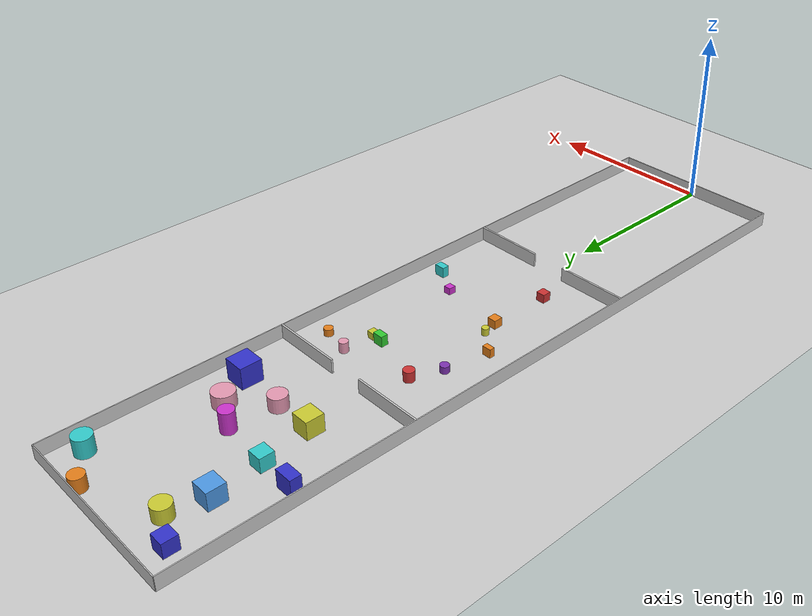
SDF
<sdf version="1.8">
 <world name="flat_world">
  <physics name="1ms" type="bullet">
   <max_step_size>0.001</max_step_size>
   <real_time_factor>1.0</real_time_factor>
  </physics>
  <plugin filename="libignition-gazebo-physics-system.so" name="ignition::gazebo::systems::Physics"/>
  <plugin filename="libignition-gazebo-user-commands-system.so" name="ignition::gazebo::systems::UserCommands"/>
  <plugin filename="libignition-gazebo-scene-broadcaster-system.so" name="ignition::gazebo::systems::SceneBroadcaster"/>
  <plugin filename="libignition-gazebo-sensors-system.so" name="ignition::gazebo::systems::Sensors"/>
  <light type="directional" name="sun">
   <pose>0 0 10 0 0 0</pose>
   <diffuse>0.8 0.8 0.8 1</diffuse>
   <specular>0.2 0.2 0.2 1</specular>
   <attenuation>
    <range>1000</range>
    <constant>0.9</constant>
    <linear>0.01</linear>
    <quadratic>0.001</quadratic>
   </attenuation>
   <direction>-0.5 0.1 -0.9</direction>
  </light>
  <model name="ground_plane">
   <static>true</static>
   <link name="link">
    <collision name="collision"><geometry><plane><normal>0 0 1</normal></plane></geometry></collision>
    <visual name="visual">
     <geometry><plane><normal>0 0 1</normal><size>100 100</size></plane></geometry>
     <material>
      <ambient>0.8 0.8 0.8 1</ambient>
      <diffuse>0.8 0.8 0.8 1</diffuse>
      <specular>0.8 0.8 0.8 1</specular>
     </material>
    </visual>
   </link>
  </model>
  <model name="wall_1">
   <pose relative_to="world">-5 20 0.25 0 0 0</pose>
   <static>true</static>
   <link name="link">
    <collision name="collision"><geometry><box><size>0.05 40 1</size></box></geometry></collision>
    <visual name="visual">
     <geometry><box><size>0.05 40 1</size></box></geometry>
     <material>
      <ambient>0.8 0.8 0.8 1</ambient>
      <diffuse>0.8 0.8 0.8 1</diffuse>
      <specular>0.8 0.8 0.8 1</specular>
     </material>
    </visual>
   </link>
  </model>
  <model name="wall_2">
   <pose relative_to="world">5 20 0.25 0 0 0</pose>
   <static>true</static>
   <link name="link">
    <collision name="collision"><geometry><box><size>0.05 40 1</size></box></geometry></collision>
    <visual name="visual">
     <geometry><box><size>0.05 40 1</size></box></geometry>
     <material>
      <ambient>0.8 0.8 0.8 1</ambient>
      <diffuse>0.8 0.8 0.8 1</diffuse>
      <specular>0.8 0.8 0.8 1</specular>
     </material>
    </visual>
   </link>
  </model>
  <model name="wall_3">
   <pose relative_to="world">0 0 0.25 0 0 0</pose>
   <static>true</static>
   <link name="link">
    <collision name="collision"><geometry><box><size>10 0.05 1</size></box></geometry></collision>
    <visual name="visual">
     <geometry><box><size>10 0.05 1</size></box></geometry>
     <material>
      <ambient>0.8 0.8 0.8 1</ambient>
      <diffuse>0.8 0.8 0.8 1</diffuse>
      <specular>0.8 0.8 0.8 1</specular>
     </material>
    </visual>
   </link>
  </model>
  <model name="wall_4">
   <pose relative_to="world">0 40 0.25 0 0 0</pose>
   <static>true</static>
   <link name="link">
    <collision name="collision"><geometry><box><size>10 0.05 1</size></box></geometry></collision>
    <visual name="visual">
     <geometry><box><size>10 0.05 1</size></box></geometry>
     <material>
      <ambient>0.8 0.8 0.8 1</ambient>
      <diffuse>0.8 0.8 0.8 1</diffuse>
      <specular>0.8 0.8 0.8 1</specular>
     </material>
    </visual>
   </link>
  </model>
  <model name="wall_M1_L">
   <pose relative_to="world">-3 13 0.25 0 0 0</pose>
   <static>true</static>
   <link name="link">
    <collision name="collision"><geometry><box><size>4 0.1 1</size></box></geometry></collision>
    <visual name="visual">
     <geometry><box><size>4 0.1 1</size></box></geometry>
     <material>
      <ambient>0.8 0.8 0.8 1</ambient>
      <diffuse>0.8 0.8 0.8 1</diffuse>
      <specular>0.8 0.8 0.8 1</specular>
     </material>
    </visual>
   </link>
  </model>
  <model name="wall_M1_R">
   <pose relative_to="world">3 13 0.25 0 0 0</pose>
   <static>true</static>
   <link name="link">
    <collision name="collision"><geometry><box><size>4 0.1 1</size></box></geometry></collision>
    <visual name="visual">
     <geometry><box><size>4 0.1 1</size></box></geometry>
     <material>
      <ambient>0.8 0.8 0.8 1</ambient>
      <diffuse>0.8 0.8 0.8 1</diffuse>
      <specular>0.8 0.8 0.8 1</specular>
     </material>
    </visual>
   </link>
  </model>
  <model name="wall_M2_L">
   <pose relative_to="world">-3 27 0.25 0 0 0</pose>
   <static>true</static>
   <link name="link">
    <collision name="collision"><geometry><box><size>4 0.1 1</size></box></geometry></collision>
    <visual name="visual">
     <geometry><box><size>4 0.1 1</size></box></geometry>
     <material>
      <ambient>0.8 0.8 0.8 1</ambient>
      <diffuse>0.8 0.8 0.8 1</diffuse>
      <specular>0.8 0.8 0.8 1</specular>
     </material>
    </visual>
   </link>
  </model>
  <model name="wall_M2_R">
   <pose relative_to="world">3 27 0.25 0 0 0</pose>
   <static>true</static>
   <link name="link">
    <collision name="collision"><geometry><box><size>4 0.1 1</size></box></geometry></collision>
    <visual name="visual">
     <geometry><box><size>4 0.1 1</size></box></geometry>
     <material>
      <ambient>0.8 0.8 0.8 1</ambient>
      <diffuse>0.8 0.8 0.8 1</diffuse>
      <specular>0.8 0.8 0.8 1</specular>
     </material>
    </visual>
   </link>
  </model>
  <model name="boxes_st3">
   <static>true</static>
   <pose>0.5 34 0 0 0 0</pose>
   <link name="c1">
    <pose>0.13179003909349518 -3.609428301056461 0.4 0 0 0</pose>
    <collision name="collision">
     <geometry><cylinder><radius>0.5</radius><length>0.8</length></cylinder></geometry>
    </collision>
    <visual name="visual">
     <geometry><cylinder><radius>0.5</radius><length>0.8</length></cylinder></geometry>
     <material>
      <ambient>0.9 0.6 0.7 1</ambient>
      <diffuse>0.9 0.6 0.7 1</diffuse>
      <specular>0.9 0.6 0.7 1</specular>
     </material>
    </visual>
   </link>
   <link name="c2">
    <pose>1.4966084119527396 5.511280237720258 0.4 0 0 0</pose>
    <collision name="collision">
     <geometry><cylinder><radius>0.4</radius><length>0.8</length></cylinder></geometry>
    </collision>
    <visual name="visual">
     <geometry><cylinder><radius>0.4</radius><length>0.8</length></cylinder></geometry>
     <material>
      <ambient>0.9 0.5 0.1 1</ambient>
      <diffuse>0.9 0.5 0.1 1</diffuse>
      <specular>0.9 0.5 0.1 1</specular>
     </material>
    </visual>
   </link>
   <link name="b3">
    <pose>-2.8746035635907603 1.8694768695346662 0.5 0 0 0</pose>
    <collision name="collision"><geometry><box><size>1.0 1.0 1.0</size></box></geometry></collision>
    <visual name="visual">
     <geometry><box><size>1.0 1.0 1.0</size></box></geometry>
     <material>
      <ambient>0.3 0.6 0.9 1</ambient>
      <diffuse>0.3 0.6 0.9 1</diffuse>
      <specular>0.3 0.6 0.9 1</specular>
     </material>
    </visual>
   </link>
   <link name="b4">
    <pose>-4.58634859124016 -0.8112041501779057 0.5 0 0 0</pose>
    <collision name="collision"><geometry><box><size>1.0 0.6 1.0</size></box></geometry></collision>
    <visual name="visual">
     <geometry><box><size>1.0 0.6 1.0</size></box></geometry>
     <material>
      <ambient>0.2 0.2 0.8 1</ambient>
      <diffuse>0.2 0.2 0.8 1</diffuse>
      <specular>0.2 0.2 0.8 1</specular>
     </material>
    </visual>
   </link>
   <link name="b5">
    <pose>-2.5617585535832443 -0.8687398462835416 0.4 0 0 0</pose>
    <collision name="collision"><geometry><box><size>0.8 0.8 0.8</size></box></geometry></collision>
    <visual name="visual">
     <geometry><box><size>0.8 0.8 0.8</size></box></geometry>
     <material>
      <ambient>0.2 0.8 0.8 1</ambient>
      <diffuse>0.2 0.8 0.8 1</diffuse>
      <specular>0.2 0.8 0.8 1</specular>
     </material>
    </visual>
   </link>
   <link name="b6">
    <pose>-2.12863131363247 -3.656695427857893 0.5 0 0 0</pose>
    <collision name="collision"><geometry><box><size>1.0 1.0 1.0</size></box></geometry></collision>
    <visual name="visual">
     <geometry><box><size>1.0 1.0 1.0</size></box></geometry>
     <material>
      <ambient>0.8 0.8 0.2 1</ambient>
      <diffuse>0.8 0.8 0.2 1</diffuse>
      <specular>0.8 0.8 0.2 1</specular>
     </material>
    </visual>
   </link>
   <link name="b7">
    <pose>2.8916892478980163 -3.6982374715849295 0.6 0 0 0</pose>
    <collision name="collision"><geometry><box><size>1.2 1.2 1.2</size></box></geometry></collision>
    <visual name="visual">
     <geometry><box><size>1.2 1.2 1.2</size></box></geometry>
     <material>
      <ambient>0.2 0.2 0.8 1</ambient>
      <diffuse>0.2 0.2 0.8 1</diffuse>
      <specular>0.2 0.2 0.8 1</specular>
     </material>
    </visual>
   </link>
   <link name="c8">
    <pose>-2.3422264055560187 3.8143011560029096 0.4 0 0 0</pose>
    <collision name="collision">
     <geometry><cylinder><radius>0.5</radius><length>0.8</length></cylinder></geometry>
    </collision>
    <visual name="visual">
     <geometry><cylinder><radius>0.5</radius><length>0.8</length></cylinder></geometry>
     <material>
      <ambient>0.8 0.8 0.2 1</ambient>
      <diffuse>0.8 0.8 0.2 1</diffuse>
      <specular>0.8 0.8 0.2 1</specular>
     </material>
    </visual>
   </link>
   <link name="c9">
    <pose>2.0281056858815214 -1.9476767779675987 0.4 0 0 0</pose>
    <collision name="collision">
     <geometry><cylinder><radius>0.6</radius><length>0.8</length></cylinder></geometry>
    </collision>
    <visual name="visual">
     <geometry><cylinder><radius>0.6</radius><length>0.8</length></cylinder></geometry>
     <material>
      <ambient>0.9 0.6 0.7 1</ambient>
      <diffuse>0.9 0.6 0.7 1</diffuse>
      <specular>0.9 0.6 0.7 1</specular>
     </material>
    </visual>
   </link>
   <link name="b10">
    <pose>-3.957495458361762 4.607082855366662 0.4 0 0 0</pose>
    <collision name="collision"><geometry><box><size>0.8 0.8 0.8</size></box></geometry></collision>
    <visual name="visual">
     <geometry><box><size>0.8 0.8 0.8</size></box></geometry>
     <material>
      <ambient>0.2 0.2 0.8 1</ambient>
      <diffuse>0.2 0.2 0.8 1</diffuse>
      <specular>0.2 0.2 0.8 1</specular>
     </material>
    </visual>
   </link>
   <link name="c11">
    <pose>3.3861797627648302 4.254790407326829 0.5 0 0 0</pose>
    <collision name="collision">
     <geometry><cylinder><radius>0.5</radius><length>1.0</length></cylinder></geometry>
    </collision>
    <visual name="visual">
     <geometry><cylinder><radius>0.5</radius><length>1.0</length></cylinder></geometry>
     <material>
      <ambient>0.2 0.8 0.8 1</ambient>
      <diffuse>0.2 0.8 0.8 1</diffuse>
      <specular>0.2 0.8 0.8 1</specular>
     </material>
    </visual>
   </link>
   <link name="c12">
    <pose>0.35544464637414386 -1.0640895346858716 0.6 0 0 0</pose>
    <collision name="collision">
     <geometry><cylinder><radius>0.4</radius><length>1.2</length></cylinder></geometry>
    </collision>
    <visual name="visual">
     <geometry><cylinder><radius>0.4</radius><length>1.2</length></cylinder></geometry>
     <material>
      <ambient>0.8 0.2 0.8 1</ambient>
      <diffuse>0.8 0.2 0.8 1</diffuse>
      <specular>0.8 0.2 0.8 1</specular>
     </material>
    </visual>
   </link>
  </model>
  <model name="boxes_st2">
   <static>true</static>
   <pose relative_to="world">0 20 0 0 0 0</pose>
   <link name="b1">
    <pose>2.2387904366892846 -1.775434319546895 0.2 0 0 0</pose>
    <collision name="collision"><geometry><box><size>0.4 0.4 0.4</size></box></geometry></collision>
    <visual name="visual">
     <geometry><box><size>0.4 0.4 0.4</size></box></geometry>
     <material>
      <ambient>0.8 0.2 0.8 1</ambient>
      <diffuse>0.8 0.2 0.8 1</diffuse>
      <specular>0.8 0.2 0.8 1</specular>
     </material>
    </visual>
   </link>
   <link name="b2">
    <pose>3.811983291534637 -2.674005601041808 0.3 0 0 0</pose>
    <collision name="collision"><geometry><box><size>0.6 0.4 0.6</size></box></geometry></collision>
    <visual name="visual">
     <geometry><box><size>0.6 0.4 0.6</size></box></geometry>
     <material>
      <ambient>0.2 0.8 0.8 1</ambient>
      <diffuse>0.2 0.8 0.8 1</diffuse>
      <specular>0.2 0.8 0.8 1</specular>
     </material>
    </visual>
   </link>
   <link name="b3">
    <pose>1.2304164431054279 3.8222297895281256 0.3 0 0 0</pose>
    <collision name="collision"><geometry><box><size>0.6 0.4 0.6</size></box></geometry></collision>
    <visual name="visual">
     <geometry><box><size>0.6 0.4 0.6</size></box></geometry>
     <material>
      <ambient>0.2 0.8 0.2 1</ambient>
      <diffuse>0.2 0.8 0.2 1</diffuse>
      <specular>0.2 0.8 0.2 1</specular>
     </material>
    </visual>
   </link>
   <link name="c4">
    <pose>3.6110623432847104 5.218661485972301 0.2 0 0 0</pose>
    <collision name="collision">
     <geometry><cylinder><radius>0.25</radius><length>0.4</length></cylinder></geometry>
    </collision>
    <visual name="visual">
     <geometry><cylinder><radius>0.25</radius><length>0.4</length></cylinder></geometry>
     <material>
      <ambient>0.9 0.5 0.1 1</ambient>
      <diffuse>0.9 0.5 0.1 1</diffuse>
      <specular>0.9 0.5 0.1 1</specular>
     </material>
    </visual>
   </link>
   <link name="c5">
    <pose>-1.731719800349222 -0.4910764558284839 0.2 0 0 0</pose>
    <collision name="collision">
     <geometry><cylinder><radius>0.2</radius><length>0.4</length></cylinder></geometry>
    </collision>
    <visual name="visual">
     <geometry><cylinder><radius>0.2</radius><length>0.4</length></cylinder></geometry>
     <material>
      <ambient>0.8 0.8 0.2 1</ambient>
      <diffuse>0.8 0.8 0.2 1</diffuse>
      <specular>0.8 0.8 0.2 1</specular>
     </material>
    </visual>
   </link>
   <link name="b6">
    <pose>-3.0933831882159923 0.6385259403810313 0.25 0 0 0</pose>
    <collision name="collision"><geometry><box><size>0.5 0.3 0.5</size></box></geometry></collision>
    <visual name="visual">
     <geometry><box><size>0.5 0.3 0.5</size></box></geometry>
     <material>
      <ambient>0.9 0.5 0.1 1</ambient>
      <diffuse>0.9 0.5 0.1 1</diffuse>
      <specular>0.9 0.5 0.1 1</specular>
     </material>
    </visual>
   </link>
   <link name="c7">
    <pose>-2.5849475403325433 3.067254960726655 0.2 0 0 0</pose>
    <collision name="collision">
     <geometry><cylinder><radius>0.25</radius><length>0.4</length></cylinder></geometry>
    </collision>
    <visual name="visual">
     <geometry><cylinder><radius>0.25</radius><length>0.4</length></cylinder></geometry>
     <material>
      <ambient>0.5 0.2 0.7 1</ambient>
      <diffuse>0.5 0.2 0.7 1</diffuse>
      <specular>0.5 0.2 0.7 1</specular>
     </material>
    </visual>
   </link>
   <link name="b8">
    <pose>1.8666551562827776 3.76473697066053 0.2 0 0 0</pose>
    <collision name="collision"><geometry><box><size>0.4 0.4 0.4</size></box></geometry></collision>
    <visual name="visual">
     <geometry><box><size>0.4 0.4 0.4</size></box></geometry>
     <material>
      <ambient>0.8 0.8 0.2 1</ambient>
      <diffuse>0.8 0.8 0.2 1</diffuse>
      <specular>0.8 0.8 0.2 1</specular>
     </material>
    </visual>
   </link>
   <link name="c9">
    <pose>-1.9079868360367591 4.726402030490207 0.3 0 0 0</pose>
    <collision name="collision">
     <geometry><cylinder><radius>0.3</radius><length>0.6</length></cylinder></geometry>
    </collision>
    <visual name="visual">
     <geometry><cylinder><radius>0.3</radius><length>0.6</length></cylinder></geometry>
     <material>
      <ambient>0.8 0.2 0.2 1</ambient>
      <diffuse>0.8 0.2 0.2 1</diffuse>
      <specular>0.8 0.2 0.2 1</specular>
     </material>
    </visual>
   </link>
   <link name="b10">
    <pose>-1.5514328886228754 -1.3438473084870548 0.25 0 0 0</pose>
    <collision name="collision"><geometry><box><size>0.5 0.5 0.5</size></box></geometry></collision>
    <visual name="visual">
     <geometry><box><size>0.5 0.5 0.5</size></box></geometry>
     <material>
      <ambient>0.9 0.5 0.1 1</ambient>
      <diffuse>0.9 0.5 0.1 1</diffuse>
      <specular>0.9 0.5 0.1 1</specular>
     </material>
    </visual>
   </link>
   <link name="b11">
    <pose>-1.6325275486620807 -4.846553464104888 0.25 0 0 0</pose>
    <collision name="collision"><geometry><box><size>0.5 0.5 0.5</size></box></geometry></collision>
    <visual name="visual">
     <geometry><box><size>0.5 0.5 0.5</size></box></geometry>
     <material>
      <ambient>0.8 0.2 0.2 1</ambient>
      <diffuse>0.8 0.2 0.2 1</diffuse>
      <specular>0.8 0.2 0.2 1</specular>
     </material>
    </visual>
   </link>
   <link name="c12">
    <pose>1.9929368391150577 5.535168617021978 0.3 0 0 0</pose>
    <collision name="collision">
     <geometry><cylinder><radius>0.25</radius><length>0.6</length></cylinder></geometry>
    </collision>
    <visual name="visual">
     <geometry><cylinder><radius>0.25</radius><length>0.6</length></cylinder></geometry>
     <material>
      <ambient>0.9 0.6 0.7 1</ambient>
      <diffuse>0.9 0.6 0.7 1</diffuse>
      <specular>0.9 0.6 0.7 1</specular>
     </material>
    </visual>
   </link>
  </model>
 </world>
</sdf>
